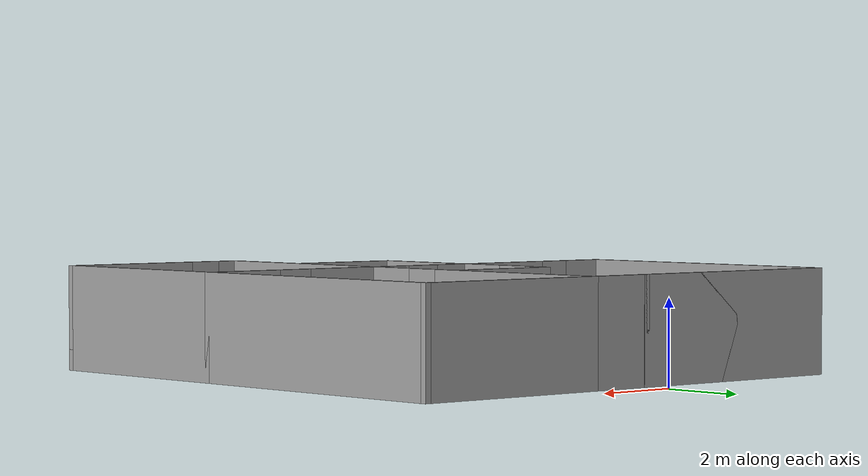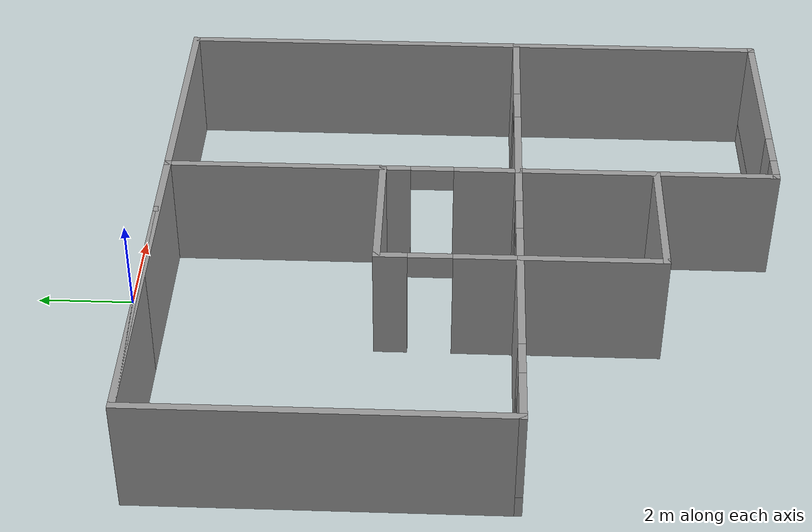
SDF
<?xml version='1.0'?>
<sdf version='1.6'>
  <model name='HouseIslam'>
    <pose frame=''>0.38 -7.06 0 0 -0 0</pose>
    <link name='Wall_11'>
      <collision name='Wall_11_Collision'>
        <geometry>
          <box>
            <size>7.5 0.15 2.5</size>
          </box>
        </geometry>
        <pose frame=''>0 0 1.25 0 -0 0</pose>
      </collision>
      <visual name='Wall_11_Visual'>
        <pose frame=''>0 0 1.25 0 -0 0</pose>
        <geometry>
          <box>
            <size>7.5 0.15 2.5</size>
          </box>
        </geometry>
        <material>
          <script>
            <uri>file://media/materials/scripts/gazebo.material</uri>
            <name>Gazebo/Grey</name>
          </script>
          <ambient>1 1 1 1</ambient>
        </material>
        <meta>
          <layer>0</layer>
        </meta>
      </visual>
      <pose frame=''>-6.1 2.675 0 0 -0 1.5708</pose>
    </link>
    <link name='Wall_13'>
      <pose frame=''>3.675 -1 0 0 -0 0</pose>
      <visual name='Wall_13_Visual_0'>
        <pose frame=''>-1.4775 0 1.25 0 -0 0</pose>
        <geometry>
          <box>
            <size>2.045 0.15 2.5</size>
          </box>
        </geometry>
        <material>
          <script>
            <uri>file://media/materials/scripts/gazebo.material</uri>
            <name>Gazebo/Grey</name>
          </script>
          <ambient>1 1 1 1</ambient>
        </material>
        <meta>
          <layer>0</layer>
        </meta>
      </visual>
      <collision name='Wall_13_Collision_0'>
        <geometry>
          <box>
            <size>2.045 0.15 2.5</size>
          </box>
        </geometry>
        <pose frame=''>-1.4775 0 1.25 0 -0 0</pose>
      </collision>
      <visual name='Wall_13_Visual_1'>
        <pose frame=''>1.4725 0 1.25 0 -0 0</pose>
        <geometry>
          <box>
            <size>2.055 0.15 2.5</size>
          </box>
        </geometry>
        <material>
          <script>
            <uri>file://media/materials/scripts/gazebo.material</uri>
            <name>Gazebo/Grey</name>
          </script>
          <ambient>1 1 1 1</ambient>
        </material>
        <meta>
          <layer>0</layer>
        </meta>
      </visual>
      <collision name='Wall_13_Collision_1'>
        <geometry>
          <box>
            <size>2.055 0.15 2.5</size>
          </box>
        </geometry>
        <pose frame=''>1.4725 0 1.25 0 -0 0</pose>
      </collision>
      <visual name='Wall_13_Visual_2'>
        <pose frame=''>-0.005 0 2.25 0 -0 0</pose>
        <geometry>
          <box>
            <size>0.9 0.15 0.5</size>
          </box>
        </geometry>
        <material>
          <script>
            <uri>file://media/materials/scripts/gazebo.material</uri>
            <name>Gazebo/Grey</name>
          </script>
          <ambient>1 1 1 1</ambient>
        </material>
        <meta>
          <layer>0</layer>
        </meta>
      </visual>
      <collision name='Wall_13_Collision_2'>
        <geometry>
          <box>
            <size>0.9 0.15 0.5</size>
          </box>
        </geometry>
        <pose frame=''>-0.005 0 2.25 0 -0 0</pose>
      </collision>
    </link>
    <link name='Wall_15'>
      <collision name='Wall_15_Collision'>
        <geometry>
          <box>
            <size>7.5 0.15 2.5</size>
          </box>
        </geometry>
        <pose frame=''>0 0 1.25 0 -0 0</pose>
      </collision>
      <visual name='Wall_15_Visual'>
        <pose frame=''>0 0 1.25 0 -0 0</pose>
        <geometry>
          <box>
            <size>7.5 0.15 2.5</size>
          </box>
        </geometry>
        <material>
          <script>
            <uri>file://media/materials/scripts/gazebo.material</uri>
            <name>Gazebo/Grey</name>
          </script>
          <ambient>1 1 1 1</ambient>
        </material>
        <meta>
          <layer>0</layer>
        </meta>
      </visual>
      <pose frame=''>6.1 2.675 0 0 -0 1.5708</pose>
    </link>
    <link name='Wall_17'>
      <collision name='Wall_17_Collision'>
        <geometry>
          <box>
            <size>5 0.15 2.5</size>
          </box>
        </geometry>
        <pose frame=''>0 0 1.25 0 -0 0</pose>
      </collision>
      <visual name='Wall_17_Visual'>
        <pose frame=''>0 0 1.25 0 -0 0</pose>
        <geometry>
          <box>
            <size>5 0.15 2.5</size>
          </box>
        </geometry>
        <material>
          <script>
            <uri>file://media/materials/scripts/gazebo.material</uri>
            <name>Gazebo/Grey</name>
          </script>
          <ambient>1 1 1 1</ambient>
        </material>
        <meta>
          <layer>0</layer>
        </meta>
      </visual>
      <pose frame=''>3.675 6.35 0 0 -0 3.14159</pose>
    </link>
    <link name='Wall_19'>
      <collision name='Wall_19_Collision'>
        <geometry>
          <box>
            <size>5.5 0.15 2.5</size>
          </box>
        </geometry>
        <pose frame=''>0 0 1.25 0 -0 0</pose>
      </collision>
      <visual name='Wall_19_Visual'>
        <pose frame=''>0 0 1.25 0 -0 0</pose>
        <geometry>
          <box>
            <size>5.5 0.15 2.5</size>
          </box>
        </geometry>
        <material>
          <script>
            <uri>file://media/materials/scripts/gazebo.material</uri>
            <name>Gazebo/Grey</name>
          </script>
          <ambient>1 1 1 1</ambient>
        </material>
        <meta>
          <layer>0</layer>
        </meta>
      </visual>
      <pose frame=''>1.25 -3.675 0 0 -0 -1.5708</pose>
    </link>
    <link name='Wall_21'>
      <collision name='Wall_21_Collision'>
        <geometry>
          <box>
            <size>5.5 0.15 2.5</size>
          </box>
        </geometry>
        <pose frame=''>0 0 1.25 0 -0 0</pose>
      </collision>
      <visual name='Wall_21_Visual'>
        <pose frame=''>0 0 1.25 0 -0 0</pose>
        <geometry>
          <box>
            <size>5.5 0.15 2.5</size>
          </box>
        </geometry>
        <material>
          <script>
            <uri>file://media/materials/scripts/gazebo.material</uri>
            <name>Gazebo/Grey</name>
          </script>
          <ambient>1 1 1 1</ambient>
        </material>
        <meta>
          <layer>0</layer>
        </meta>
      </visual>
      <pose frame=''>6.1 -3.675 0 0 -0 -1.5708</pose>
    </link>
    <link name='Wall_23'>
      <pose frame=''>3.675 -6.35 0 0 -0 0</pose>
      <visual name='Wall_23_Visual_0'>
        <pose frame=''>-2.1825 0 1.25 0 -0 0</pose>
        <geometry>
          <box>
            <size>0.635 0.15 2.5</size>
          </box>
        </geometry>
        <material>
          <script>
            <uri>file://media/materials/scripts/gazebo.material</uri>
            <name>Gazebo/Grey</name>
          </script>
          <ambient>1 1 1 1</ambient>
        </material>
        <meta>
          <layer>0</layer>
        </meta>
      </visual>
      <collision name='Wall_23_Collision_0'>
        <geometry>
          <box>
            <size>0.635 0.15 2.5</size>
          </box>
        </geometry>
        <pose frame=''>-2.1825 0 1.25 0 -0 0</pose>
      </collision>
      <visual name='Wall_23_Visual_1'>
        <pose frame=''>0.3175 0 0.25 0 -0 0</pose>
        <geometry>
          <box>
            <size>4.365 0.15 0.5</size>
          </box>
        </geometry>
        <material>
          <script>
            <uri>file://media/materials/scripts/gazebo.material</uri>
            <name>Gazebo/Grey</name>
          </script>
          <ambient>1 1 1 1</ambient>
        </material>
        <meta>
          <layer>0</layer>
        </meta>
      </visual>
      <collision name='Wall_23_Collision_1'>
        <geometry>
          <box>
            <size>4.365 0.15 0.5</size>
          </box>
        </geometry>
        <pose frame=''>0.3175 0 0.25 0 -0 0</pose>
      </collision>
      <visual name='Wall_23_Visual_2'>
        <pose frame=''>0.7175 0 1.5 0 -0 0</pose>
        <geometry>
          <box>
            <size>3.565 0.15 2</size>
          </box>
        </geometry>
        <material>
          <script>
            <uri>file://media/materials/scripts/gazebo.material</uri>
            <name>Gazebo/Grey</name>
          </script>
          <ambient>1 1 1 1</ambient>
        </material>
        <meta>
          <layer>0</layer>
        </meta>
      </visual>
      <collision name='Wall_23_Collision_2'>
        <geometry>
          <box>
            <size>3.565 0.15 2</size>
          </box>
        </geometry>
        <pose frame=''>0.7175 0 1.5 0 -0 0</pose>
      </collision>
      <visual name='Wall_23_Visual_3'>
        <pose frame=''>-1.465 0 1.9 0 -0 0</pose>
        <geometry>
          <box>
            <size>0.8 0.15 1.2</size>
          </box>
        </geometry>
        <material>
          <script>
            <uri>file://media/materials/scripts/gazebo.material</uri>
            <name>Gazebo/Grey</name>
          </script>
          <ambient>1 1 1 1</ambient>
        </material>
        <meta>
          <layer>0</layer>
        </meta>
      </visual>
      <collision name='Wall_23_Collision_3'>
        <geometry>
          <box>
            <size>0.8 0.15 1.2</size>
          </box>
        </geometry>
        <pose frame=''>-1.465 0 1.9 0 -0 0</pose>
      </collision>
    </link>
    <link name='Wall_28'>
      <pose frame=''>-1.64 0.404999 0 0 -0 1.5708</pose>
      <visual name='Wall_28_Visual_0'>
        <pose frame=''>-0.7925 0 1.25 0 -0 0</pose>
        <geometry>
          <box>
            <size>1.415 0.15 2.5</size>
          </box>
        </geometry>
        <material>
          <script>
            <uri>file://media/materials/scripts/gazebo.material</uri>
            <name>Gazebo/Grey</name>
          </script>
          <ambient>1 1 1 1</ambient>
        </material>
        <meta>
          <layer>0</layer>
        </meta>
      </visual>
      <collision name='Wall_28_Collision_0'>
        <geometry>
          <box>
            <size>1.415 0.15 2.5</size>
          </box>
        </geometry>
        <pose frame=''>-0.7925 0 1.25 0 -0 0</pose>
      </collision>
      <visual name='Wall_28_Visual_1'>
        <pose frame=''>1.1575 0 1.25 0 -0 0</pose>
        <geometry>
          <box>
            <size>0.685 0.15 2.5</size>
          </box>
        </geometry>
        <material>
          <script>
            <uri>file://media/materials/scripts/gazebo.material</uri>
            <name>Gazebo/Grey</name>
          </script>
          <ambient>1 1 1 1</ambient>
        </material>
        <meta>
          <layer>0</layer>
        </meta>
      </visual>
      <collision name='Wall_28_Collision_1'>
        <geometry>
          <box>
            <size>0.685 0.15 2.5</size>
          </box>
        </geometry>
        <pose frame=''>1.1575 0 1.25 0 -0 0</pose>
      </collision>
      <visual name='Wall_28_Visual_2'>
        <pose frame=''>0.365 0 2.25 0 -0 0</pose>
        <geometry>
          <box>
            <size>0.9 0.15 0.5</size>
          </box>
        </geometry>
        <material>
          <script>
            <uri>file://media/materials/scripts/gazebo.material</uri>
            <name>Gazebo/Grey</name>
          </script>
          <ambient>1 1 1 1</ambient>
        </material>
        <meta>
          <layer>0</layer>
        </meta>
      </visual>
      <collision name='Wall_28_Collision_2'>
        <geometry>
          <box>
            <size>0.9 0.15 0.5</size>
          </box>
        </geometry>
        <pose frame=''>0.365 0 2.25 0 -0 0</pose>
      </collision>
    </link>
    <link name='Wall_3'>
      <collision name='Wall_3_Collision'>
        <geometry>
          <box>
            <size>7.5 0.15 2.5</size>
          </box>
        </geometry>
        <pose frame=''>0 0 1.25 0 -0 0</pose>
      </collision>
      <visual name='Wall_3_Visual'>
        <pose frame=''>0 0 1.25 0 -0 0</pose>
        <geometry>
          <box>
            <size>7.5 0.15 2.5</size>
          </box>
        </geometry>
        <material>
          <script>
            <uri>file://media/materials/scripts/gazebo.material</uri>
            <name>Gazebo/Grey</name>
          </script>
          <ambient>1 1 1 1</ambient>
        </material>
        <meta>
          <layer>0</layer>
        </meta>
      </visual>
      <pose frame=''>-2.425 6.35 0 0 -0 3.14159</pose>
    </link>
    <link name='Wall_30'>
      <collision name='Wall_30_Collision'>
        <geometry>
          <box>
            <size>3 0.15 2.5</size>
          </box>
        </geometry>
        <pose frame=''>0 0 1.25 0 -0 0</pose>
      </collision>
      <visual name='Wall_30_Visual'>
        <pose frame=''>0 0 1.25 0 -0 0</pose>
        <geometry>
          <box>
            <size>3 0.15 2.5</size>
          </box>
        </geometry>
        <material>
          <script>
            <uri>file://media/materials/scripts/gazebo.material</uri>
            <name>Gazebo/Grey</name>
          </script>
          <ambient>1 1 1 1</ambient>
        </material>
        <meta>
          <layer>0</layer>
        </meta>
      </visual>
      <pose frame=''>-0.215 1.83 0 0 -0 0</pose>
    </link>
    <link name='Wall_32'>
      <collision name='Wall_32_Collision'>
        <geometry>
          <box>
            <size>3 0.15 2.5</size>
          </box>
        </geometry>
        <pose frame=''>0 0 1.25 0 -0 0</pose>
      </collision>
      <visual name='Wall_32_Visual'>
        <pose frame=''>0 0 1.25 0 -0 0</pose>
        <geometry>
          <box>
            <size>3 0.15 2.5</size>
          </box>
        </geometry>
        <material>
          <script>
            <uri>file://media/materials/scripts/gazebo.material</uri>
            <name>Gazebo/Grey</name>
          </script>
          <ambient>1 1 1 1</ambient>
        </material>
        <meta>
          <layer>0</layer>
        </meta>
      </visual>
      <pose frame=''>-1.64 -2.445 0 0 -0 -1.5708</pose>
    </link>
    <link name='Wall_33'>
      <collision name='Wall_33_Collision'>
        <geometry>
          <box>
            <size>3 0.15 2.5</size>
          </box>
        </geometry>
        <pose frame=''>0 0 1.25 0 -0 0</pose>
      </collision>
      <visual name='Wall_33_Visual'>
        <pose frame=''>0 0 1.25 0 -0 0</pose>
        <geometry>
          <box>
            <size>3 0.15 2.5</size>
          </box>
        </geometry>
        <material>
          <script>
            <uri>file://media/materials/scripts/gazebo.material</uri>
            <name>Gazebo/Grey</name>
          </script>
          <ambient>1 1 1 1</ambient>
        </material>
        <meta>
          <layer>0</layer>
        </meta>
      </visual>
      <pose frame=''>-0.215 -3.87 0 0 -0 0</pose>
    </link>
    <link name='Wall_4'>
      <collision name='Wall_4_Collision'>
        <geometry>
          <box>
            <size>5.91 0.15 2.5</size>
          </box>
        </geometry>
        <pose frame=''>0 0 1.25 0 -0 0</pose>
      </collision>
      <visual name='Wall_4_Visual'>
        <pose frame=''>0 0 1.25 0 -0 0</pose>
        <geometry>
          <box>
            <size>5.91 0.15 2.5</size>
          </box>
        </geometry>
        <material>
          <script>
            <uri>file://media/materials/scripts/gazebo.material</uri>
            <name>Gazebo/Grey</name>
          </script>
          <ambient>1 1 1 1</ambient>
        </material>
        <meta>
          <layer>0</layer>
        </meta>
      </visual>
      <pose frame=''>-3.22 6.35 0 0 -0 0</pose>
    </link>
    <link name='Wall_5'>
      <collision name='Wall_5_Collision'>
        <geometry>
          <box>
            <size>0.16 0.15 2.5</size>
          </box>
        </geometry>
        <pose frame=''>0 0 1.25 0 -0 0</pose>
      </collision>
      <visual name='Wall_5_Visual'>
        <pose frame=''>0 0 1.25 0 -0 0</pose>
        <geometry>
          <box>
            <size>0.16 0.15 2.5</size>
          </box>
        </geometry>
        <material>
          <script>
            <uri>file://media/materials/scripts/gazebo.material</uri>
            <name>Gazebo/Grey</name>
          </script>
          <ambient>1 1 1 1</ambient>
        </material>
        <meta>
          <layer>0</layer>
        </meta>
      </visual>
      <pose frame=''>-0.335 6.35 0 0 -0 0</pose>
    </link>
    <link name='Wall_7'>
      <pose frame=''>1.25 2.675 0 0 -0 -1.5708</pose>
      <visual name='Wall_7_Visual_0'>
        <pose frame=''>-1.1625 0 1.25 0 -0 0</pose>
        <geometry>
          <box>
            <size>5.175 0.15 2.5</size>
          </box>
        </geometry>
        <material>
          <script>
            <uri>file://media/materials/scripts/gazebo.material</uri>
            <name>Gazebo/Grey</name>
          </script>
          <ambient>1 1 1 1</ambient>
        </material>
        <meta>
          <layer>0</layer>
        </meta>
      </visual>
      <collision name='Wall_7_Collision_0'>
        <geometry>
          <box>
            <size>5.175 0.15 2.5</size>
          </box>
        </geometry>
        <pose frame=''>-1.1625 0 1.25 0 -0 0</pose>
      </collision>
      <visual name='Wall_7_Visual_1'>
        <pose frame=''>3.0375 0 1.25 0 -0 0</pose>
        <geometry>
          <box>
            <size>1.425 0.15 2.5</size>
          </box>
        </geometry>
        <material>
          <script>
            <uri>file://media/materials/scripts/gazebo.material</uri>
            <name>Gazebo/Grey</name>
          </script>
          <ambient>1 1 1 1</ambient>
        </material>
        <meta>
          <layer>0</layer>
        </meta>
      </visual>
      <collision name='Wall_7_Collision_1'>
        <geometry>
          <box>
            <size>1.425 0.15 2.5</size>
          </box>
        </geometry>
        <pose frame=''>3.0375 0 1.25 0 -0 0</pose>
      </collision>
      <visual name='Wall_7_Visual_2'>
        <pose frame=''>1.875 0 2.25 0 -0 0</pose>
        <geometry>
          <box>
            <size>0.9 0.15 0.5</size>
          </box>
        </geometry>
        <material>
          <script>
            <uri>file://media/materials/scripts/gazebo.material</uri>
            <name>Gazebo/Grey</name>
          </script>
          <ambient>1 1 1 1</ambient>
        </material>
        <meta>
          <layer>0</layer>
        </meta>
      </visual>
      <collision name='Wall_7_Collision_2'>
        <geometry>
          <box>
            <size>0.9 0.15 0.5</size>
          </box>
        </geometry>
        <pose frame=''>1.875 0 2.25 0 -0 0</pose>
      </collision>
    </link>
    <link name='Wall_9'>
      <pose frame=''>-2.425 -1 0 0 -0 3.14159</pose>
      <visual name='Wall_9_Visual_0'>
        <pose frame=''>-3.1925 0 1.25 0 -0 0</pose>
        <geometry>
          <box>
            <size>1.115 0.15 2.5</size>
          </box>
        </geometry>
        <material>
          <script>
            <uri>file://media/materials/scripts/gazebo.material</uri>
            <name>Gazebo/Grey</name>
          </script>
          <ambient>1 1 1 1</ambient>
        </material>
        <meta>
          <layer>0</layer>
        </meta>
      </visual>
      <collision name='Wall_9_Collision_0'>
        <geometry>
          <box>
            <size>1.115 0.15 2.5</size>
          </box>
        </geometry>
        <pose frame=''>-3.1925 0 1.25 0 -0 0</pose>
      </collision>
      <visual name='Wall_9_Visual_1'>
        <pose frame=''>0.005 0 1.25 0 -0 0</pose>
        <geometry>
          <box>
            <size>3.48 0.15 2.5</size>
          </box>
        </geometry>
        <material>
          <script>
            <uri>file://media/materials/scripts/gazebo.material</uri>
            <name>Gazebo/Grey</name>
          </script>
          <ambient>1 1 1 1</ambient>
        </material>
        <meta>
          <layer>0</layer>
        </meta>
      </visual>
      <collision name='Wall_9_Collision_1'>
        <geometry>
          <box>
            <size>3.48 0.15 2.5</size>
          </box>
        </geometry>
        <pose frame=''>0.005 0 1.25 0 -0 0</pose>
      </collision>
      <visual name='Wall_9_Visual_2'>
        <pose frame=''>2.7475 0 0.25 0 -0 0</pose>
        <geometry>
          <box>
            <size>2.005 0.15 0.5</size>
          </box>
        </geometry>
        <material>
          <script>
            <uri>file://media/materials/scripts/gazebo.material</uri>
            <name>Gazebo/Grey</name>
          </script>
          <ambient>1 1 1 1</ambient>
        </material>
        <meta>
          <layer>0</layer>
        </meta>
      </visual>
      <collision name='Wall_9_Collision_2'>
        <geometry>
          <box>
            <size>2.005 0.15 0.5</size>
          </box>
        </geometry>
        <pose frame=''>2.7475 0 0.25 0 -0 0</pose>
      </collision>
      <visual name='Wall_9_Visual_3'>
        <pose frame=''>3.1475 0 1.5 0 -0 0</pose>
        <geometry>
          <box>
            <size>1.205 0.15 2</size>
          </box>
        </geometry>
        <material>
          <script>
            <uri>file://media/materials/scripts/gazebo.material</uri>
            <name>Gazebo/Grey</name>
          </script>
          <ambient>1 1 1 1</ambient>
        </material>
        <meta>
          <layer>0</layer>
        </meta>
      </visual>
      <collision name='Wall_9_Collision_3'>
        <geometry>
          <box>
            <size>1.205 0.15 2</size>
          </box>
        </geometry>
        <pose frame=''>3.1475 0 1.5 0 -0 0</pose>
      </collision>
      <visual name='Wall_9_Visual_4'>
        <pose frame=''>2.145 0 1.9 0 -0 0</pose>
        <geometry>
          <box>
            <size>0.8 0.15 1.2</size>
          </box>
        </geometry>
        <material>
          <script>
            <uri>file://media/materials/scripts/gazebo.material</uri>
            <name>Gazebo/Grey</name>
          </script>
          <ambient>1 1 1 1</ambient>
        </material>
        <meta>
          <layer>0</layer>
        </meta>
      </visual>
      <collision name='Wall_9_Collision_4'>
        <geometry>
          <box>
            <size>0.8 0.15 1.2</size>
          </box>
        </geometry>
        <pose frame=''>2.145 0 1.9 0 -0 0</pose>
      </collision>
      <visual name='Wall_9_Visual_5'>
        <pose frame=''>-2.185 0 2.25 0 -0 0</pose>
        <geometry>
          <box>
            <size>0.9 0.15 0.5</size>
          </box>
        </geometry>
        <material>
          <script>
            <uri>file://media/materials/scripts/gazebo.material</uri>
            <name>Gazebo/Grey</name>
          </script>
          <ambient>1 1 1 1</ambient>
        </material>
        <meta>
          <layer>0</layer>
        </meta>
      </visual>
      <collision name='Wall_9_Collision_5'>
        <geometry>
          <box>
            <size>0.9 0.15 0.5</size>
          </box>
        </geometry>
        <pose frame=''>-2.185 0 2.25 0 -0 0</pose>
      </collision>
    </link>
    <static>1</static>
  </model>
</sdf>
